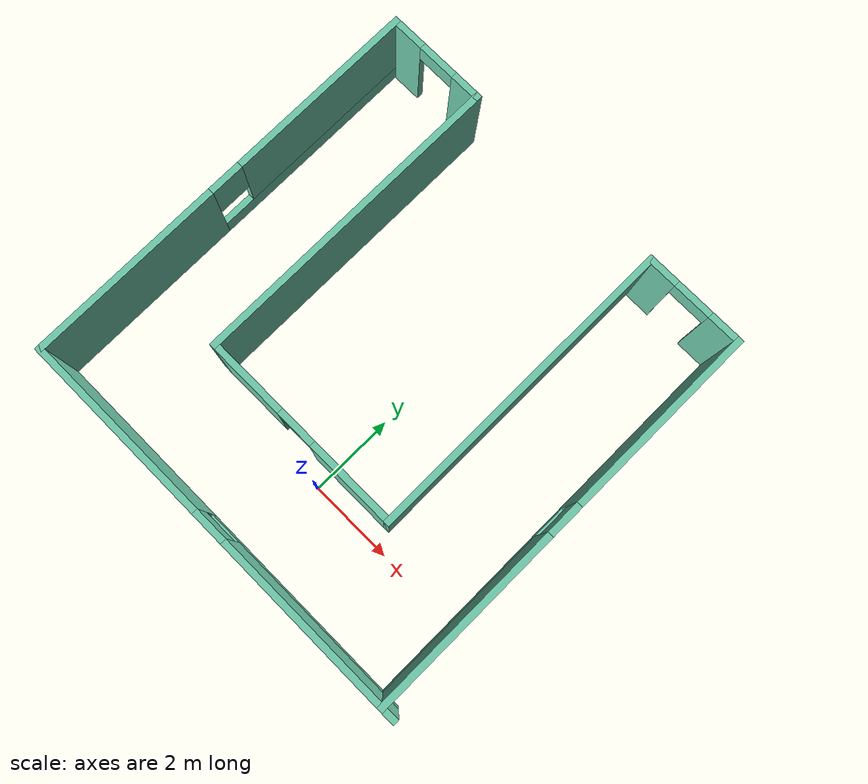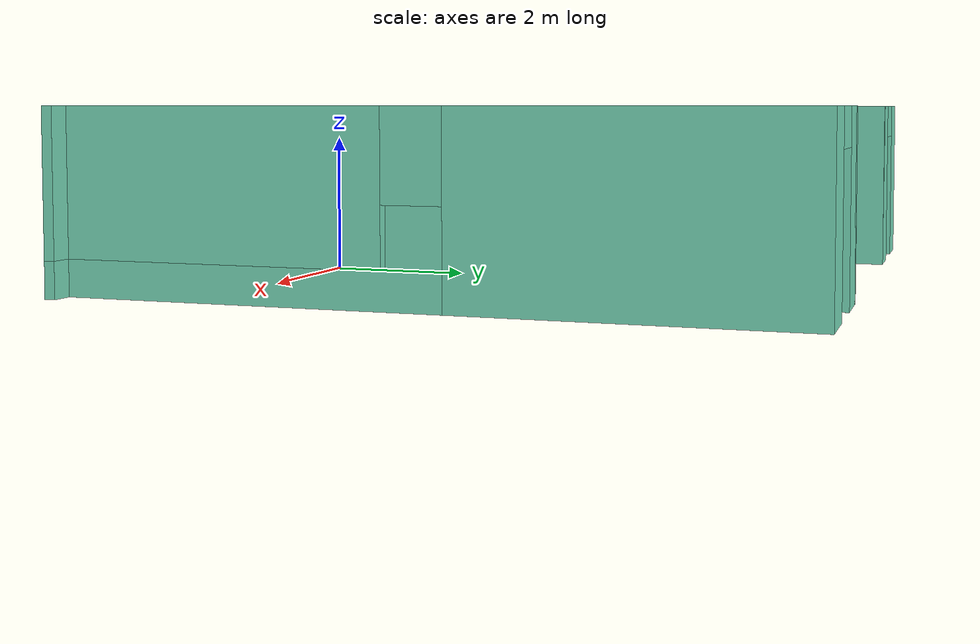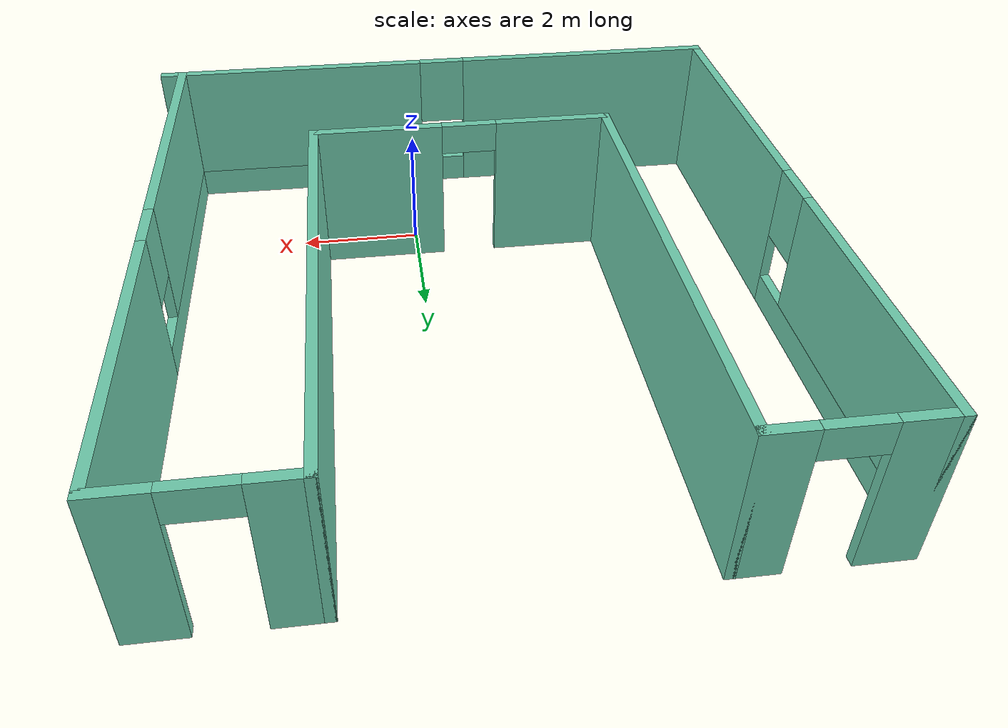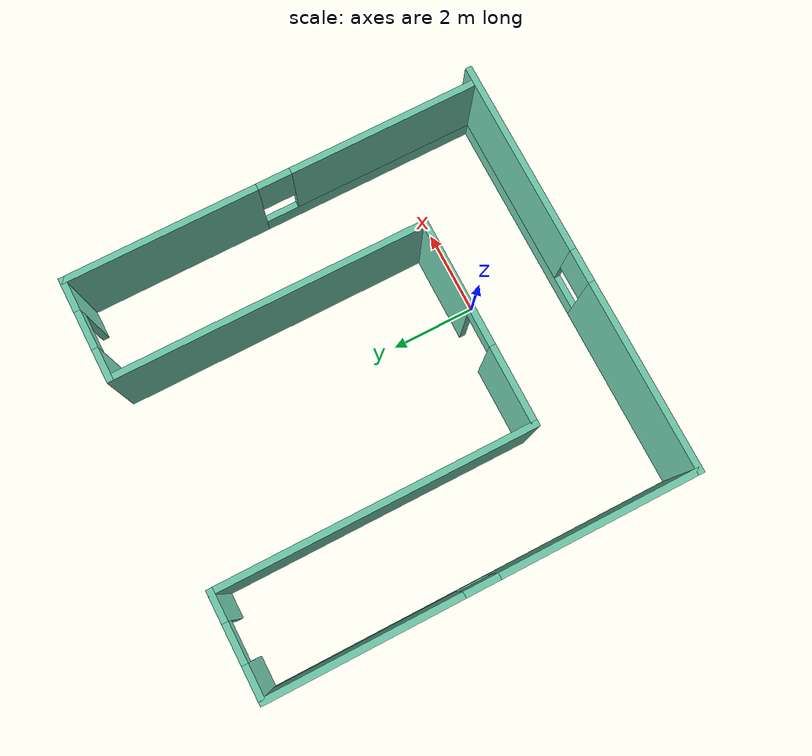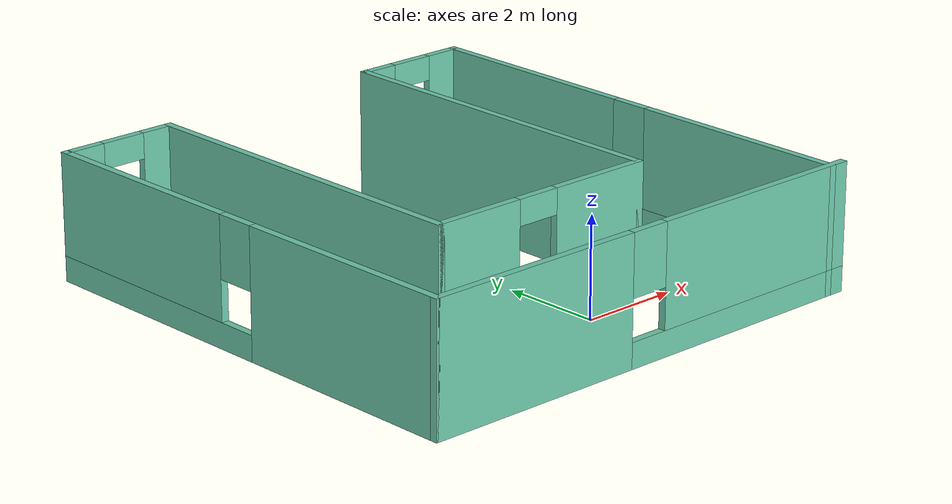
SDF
<?xml version='1.0'?>
<sdf version='1.6'>
  <model name='mybuilding'>
    <pose frame=''>-0.638341 2.90605 0 0 -0 0</pose>
    <link name='Wall_28'>
      <pose frame=''>0 -4.925 0 0 -0 0</pose>
      <visual name='Wall_28_Visual_0'>
        <pose frame=''>-2.73483 0 1.25 0 -0 0</pose>
        <geometry>
          <box>
            <size>4.53034 0.15 2.5</size>
          </box>
        </geometry>
        <material>
          <script>
            <uri>file://media/materials/scripts/gazebo.material</uri>
            <name>Gazebo/Grey</name>
          </script>
          <ambient>0.435294 0.796078 0.67451 1</ambient>
        </material>
        <meta>
          <layer>0</layer>
        </meta>
      </visual>
      <collision name='Wall_28_Collision_0'>
        <geometry>
          <box>
            <size>4.53034 0.15 2.5</size>
          </box>
        </geometry>
        <pose frame=''>-2.73483 0 1.25 0 -0 0</pose>
      </collision>
      <visual name='Wall_28_Visual_1'>
        <pose frame=''>2.26517 0 0.25 0 -0 0</pose>
        <geometry>
          <box>
            <size>5.46966 0.15 0.5</size>
          </box>
        </geometry>
        <material>
          <script>
            <uri>file://media/materials/scripts/gazebo.material</uri>
            <name>Gazebo/Grey</name>
          </script>
          <ambient>0.435294 0.796078 0.67451 1</ambient>
        </material>
        <meta>
          <layer>0</layer>
        </meta>
      </visual>
      <collision name='Wall_28_Collision_1'>
        <geometry>
          <box>
            <size>5.46966 0.15 0.5</size>
          </box>
        </geometry>
        <pose frame=''>2.26517 0 0.25 0 -0 0</pose>
      </collision>
      <visual name='Wall_28_Visual_2'>
        <pose frame=''>2.66517 0 1.5 0 -0 0</pose>
        <geometry>
          <box>
            <size>4.66966 0.15 2</size>
          </box>
        </geometry>
        <material>
          <script>
            <uri>file://media/materials/scripts/gazebo.material</uri>
            <name>Gazebo/Grey</name>
          </script>
          <ambient>0.435294 0.796078 0.67451 1</ambient>
        </material>
        <meta>
          <layer>0</layer>
        </meta>
      </visual>
      <collision name='Wall_28_Collision_2'>
        <geometry>
          <box>
            <size>4.66966 0.15 2</size>
          </box>
        </geometry>
        <pose frame=''>2.66517 0 1.5 0 -0 0</pose>
      </collision>
      <visual name='Wall_28_Visual_3'>
        <pose frame=''>-0.069659 0 1.9 0 -0 0</pose>
        <geometry>
          <box>
            <size>0.8 0.15 1.2</size>
          </box>
        </geometry>
        <material>
          <script>
            <uri>file://media/materials/scripts/gazebo.material</uri>
            <name>Gazebo/Grey</name>
          </script>
          <ambient>0.435294 0.796078 0.67451 1</ambient>
        </material>
        <meta>
          <layer>0</layer>
        </meta>
      </visual>
      <collision name='Wall_28_Collision_3'>
        <geometry>
          <box>
            <size>0.8 0.15 1.2</size>
          </box>
        </geometry>
        <pose frame=''>-0.069659 0 1.9 0 -0 0</pose>
      </collision>
    </link>
    <link name='Wall_30'>
      <pose frame=''>-4.925 0 0 0 -0 1.5708</pose>
      <visual name='Wall_30_Visual_0'>
        <pose frame=''>-2.66253 0 1.25 0 -0 0</pose>
        <geometry>
          <box>
            <size>4.67494 0.15 2.5</size>
          </box>
        </geometry>
        <material>
          <script>
            <uri>file://media/materials/scripts/gazebo.material</uri>
            <name>Gazebo/Grey</name>
          </script>
          <ambient>0.435294 0.796078 0.67451 1</ambient>
        </material>
        <meta>
          <layer>0</layer>
        </meta>
      </visual>
      <collision name='Wall_30_Collision_0'>
        <geometry>
          <box>
            <size>4.67494 0.15 2.5</size>
          </box>
        </geometry>
        <pose frame=''>-2.66253 0 1.25 0 -0 0</pose>
      </collision>
      <visual name='Wall_30_Visual_1'>
        <pose frame=''>2.33747 0 0.25 0 -0 0</pose>
        <geometry>
          <box>
            <size>5.32506 0.15 0.5</size>
          </box>
        </geometry>
        <material>
          <script>
            <uri>file://media/materials/scripts/gazebo.material</uri>
            <name>Gazebo/Grey</name>
          </script>
          <ambient>0.435294 0.796078 0.67451 1</ambient>
        </material>
        <meta>
          <layer>0</layer>
        </meta>
      </visual>
      <collision name='Wall_30_Collision_1'>
        <geometry>
          <box>
            <size>5.32506 0.15 0.5</size>
          </box>
        </geometry>
        <pose frame=''>2.33747 0 0.25 0 -0 0</pose>
      </collision>
      <visual name='Wall_30_Visual_2'>
        <pose frame=''>2.73747 0 1.5 0 -0 0</pose>
        <geometry>
          <box>
            <size>4.52506 0.15 2</size>
          </box>
        </geometry>
        <material>
          <script>
            <uri>file://media/materials/scripts/gazebo.material</uri>
            <name>Gazebo/Grey</name>
          </script>
          <ambient>0.435294 0.796078 0.67451 1</ambient>
        </material>
        <meta>
          <layer>0</layer>
        </meta>
      </visual>
      <collision name='Wall_30_Collision_2'>
        <geometry>
          <box>
            <size>4.52506 0.15 2</size>
          </box>
        </geometry>
        <pose frame=''>2.73747 0 1.5 0 -0 0</pose>
      </collision>
      <visual name='Wall_30_Visual_3'>
        <pose frame=''>0.074937 0 1.9 0 -0 0</pose>
        <geometry>
          <box>
            <size>0.8 0.15 1.2</size>
          </box>
        </geometry>
        <material>
          <script>
            <uri>file://media/materials/scripts/gazebo.material</uri>
            <name>Gazebo/Grey</name>
          </script>
          <ambient>0.435294 0.796078 0.67451 1</ambient>
        </material>
        <meta>
          <layer>0</layer>
        </meta>
      </visual>
      <collision name='Wall_30_Collision_3'>
        <geometry>
          <box>
            <size>0.8 0.15 1.2</size>
          </box>
        </geometry>
        <pose frame=''>0.074937 0 1.9 0 -0 0</pose>
      </collision>
    </link>
    <link name='Wall_32'>
      <pose frame=''>-3.75 4.925 0 0 -0 0</pose>
      <visual name='Wall_32_Visual_0'>
        <pose frame=''>-0.820325 0 1.25 0 -0 0</pose>
        <geometry>
          <box>
            <size>0.859349 0.15 2.5</size>
          </box>
        </geometry>
        <material>
          <script>
            <uri>file://media/materials/scripts/gazebo.material</uri>
            <name>Gazebo/Grey</name>
          </script>
          <ambient>0.435294 0.796078 0.67451 1</ambient>
        </material>
        <meta>
          <layer>0</layer>
        </meta>
      </visual>
      <collision name='Wall_32_Collision_0'>
        <geometry>
          <box>
            <size>0.859349 0.15 2.5</size>
          </box>
        </geometry>
        <pose frame=''>-0.820325 0 1.25 0 -0 0</pose>
      </collision>
      <visual name='Wall_32_Visual_1'>
        <pose frame=''>0.879675 0 1.25 0 -0 0</pose>
        <geometry>
          <box>
            <size>0.740651 0.15 2.5</size>
          </box>
        </geometry>
        <material>
          <script>
            <uri>file://media/materials/scripts/gazebo.material</uri>
            <name>Gazebo/Grey</name>
          </script>
          <ambient>0.435294 0.796078 0.67451 1</ambient>
        </material>
        <meta>
          <layer>0</layer>
        </meta>
      </visual>
      <collision name='Wall_32_Collision_1'>
        <geometry>
          <box>
            <size>0.740651 0.15 2.5</size>
          </box>
        </geometry>
        <pose frame=''>0.879675 0 1.25 0 -0 0</pose>
      </collision>
      <visual name='Wall_32_Visual_2'>
        <pose frame=''>0.059349 0 2.25 0 -0 0</pose>
        <geometry>
          <box>
            <size>0.9 0.15 0.5</size>
          </box>
        </geometry>
        <material>
          <script>
            <uri>file://media/materials/scripts/gazebo.material</uri>
            <name>Gazebo/Grey</name>
          </script>
          <ambient>0.435294 0.796078 0.67451 1</ambient>
        </material>
        <meta>
          <layer>0</layer>
        </meta>
      </visual>
      <collision name='Wall_32_Collision_2'>
        <geometry>
          <box>
            <size>0.9 0.15 0.5</size>
          </box>
        </geometry>
        <pose frame=''>0.059349 0 2.25 0 -0 0</pose>
      </collision>
    </link>
    <link name='Wall_33'>
      <collision name='Wall_33_Collision'>
        <geometry>
          <box>
            <size>7.5 0.15 2.5</size>
          </box>
        </geometry>
        <pose frame=''>0 0 1.25 0 -0 0</pose>
      </collision>
      <visual name='Wall_33_Visual'>
        <pose frame=''>0 0 1.25 0 -0 0</pose>
        <geometry>
          <box>
            <size>7.5 0.15 2.5</size>
          </box>
        </geometry>
        <material>
          <script>
            <uri>file://media/materials/scripts/gazebo.material</uri>
            <name>Gazebo/Grey</name>
          </script>
          <ambient>0.435294 0.796078 0.67451 1</ambient>
        </material>
        <meta>
          <layer>0</layer>
        </meta>
      </visual>
      <pose frame=''>-2.575 1.25 0 0 0 -1.5708</pose>
    </link>
    <link name='Wall_34'>
      <pose frame=''>-0.15 -2.425 0 0 -0 0</pose>
      <visual name='Wall_34_Visual_0'>
        <pose frame=''>-1.53654 0 1.25 0 -0 0</pose>
        <geometry>
          <box>
            <size>1.92691 0.15 2.5</size>
          </box>
        </geometry>
        <material>
          <script>
            <uri>file://media/materials/scripts/gazebo.material</uri>
            <name>Gazebo/Grey</name>
          </script>
          <ambient>0.435294 0.796078 0.67451 1</ambient>
        </material>
        <meta>
          <layer>0</layer>
        </meta>
      </visual>
      <collision name='Wall_34_Collision_0'>
        <geometry>
          <box>
            <size>1.92691 0.15 2.5</size>
          </box>
        </geometry>
        <pose frame=''>-1.53654 0 1.25 0 -0 0</pose>
      </collision>
      <visual name='Wall_34_Visual_1'>
        <pose frame=''>1.41346 0 1.25 0 -0 0</pose>
        <geometry>
          <box>
            <size>2.17308 0.15 2.5</size>
          </box>
        </geometry>
        <material>
          <script>
            <uri>file://media/materials/scripts/gazebo.material</uri>
            <name>Gazebo/Grey</name>
          </script>
          <ambient>0.435294 0.796078 0.67451 1</ambient>
        </material>
        <meta>
          <layer>0</layer>
        </meta>
      </visual>
      <collision name='Wall_34_Collision_1'>
        <geometry>
          <box>
            <size>2.17308 0.15 2.5</size>
          </box>
        </geometry>
        <pose frame=''>1.41346 0 1.25 0 -0 0</pose>
      </collision>
      <visual name='Wall_34_Visual_2'>
        <pose frame=''>-0.123085 0 2.25 0 -0 0</pose>
        <geometry>
          <box>
            <size>0.9 0.15 0.5</size>
          </box>
        </geometry>
        <material>
          <script>
            <uri>file://media/materials/scripts/gazebo.material</uri>
            <name>Gazebo/Grey</name>
          </script>
          <ambient>0.435294 0.796078 0.67451 1</ambient>
        </material>
        <meta>
          <layer>0</layer>
        </meta>
      </visual>
      <collision name='Wall_34_Collision_2'>
        <geometry>
          <box>
            <size>0.9 0.15 0.5</size>
          </box>
        </geometry>
        <pose frame=''>-0.123085 0 2.25 0 -0 0</pose>
      </collision>
    </link>
    <link name='Wall_35'>
      <collision name='Wall_35_Collision'>
        <geometry>
          <box>
            <size>7.5 0.15 2.5</size>
          </box>
        </geometry>
        <pose frame=''>0 0 1.25 0 -0 0</pose>
      </collision>
      <visual name='Wall_35_Visual'>
        <pose frame=''>0 0 1.25 0 -0 0</pose>
        <geometry>
          <box>
            <size>7.5 0.15 2.5</size>
          </box>
        </geometry>
        <material>
          <script>
            <uri>file://media/materials/scripts/gazebo.material</uri>
            <name>Gazebo/Grey</name>
          </script>
          <ambient>0.435294 0.796078 0.67451 1</ambient>
        </material>
        <meta>
          <layer>0</layer>
        </meta>
      </visual>
      <pose frame=''>2.275 1.25 0 0 -0 1.5708</pose>
    </link>
    <link name='Wall_36'>
      <pose frame=''>3.45 4.925 0 0 -0 0</pose>
      <visual name='Wall_36_Visual_0'>
        <pose frame=''>-0.860361 0 1.25 0 -0 0</pose>
        <geometry>
          <box>
            <size>0.779278 0.15 2.5</size>
          </box>
        </geometry>
        <material>
          <script>
            <uri>file://media/materials/scripts/gazebo.material</uri>
            <name>Gazebo/Grey</name>
          </script>
          <ambient>0.435294 0.796078 0.67451 1</ambient>
        </material>
        <meta>
          <layer>0</layer>
        </meta>
      </visual>
      <collision name='Wall_36_Collision_0'>
        <geometry>
          <box>
            <size>0.779278 0.15 2.5</size>
          </box>
        </geometry>
        <pose frame=''>-0.860361 0 1.25 0 -0 0</pose>
      </collision>
      <visual name='Wall_36_Visual_1'>
        <pose frame=''>0.839639 0 1.25 0 -0 0</pose>
        <geometry>
          <box>
            <size>0.820722 0.15 2.5</size>
          </box>
        </geometry>
        <material>
          <script>
            <uri>file://media/materials/scripts/gazebo.material</uri>
            <name>Gazebo/Grey</name>
          </script>
          <ambient>0.435294 0.796078 0.67451 1</ambient>
        </material>
        <meta>
          <layer>0</layer>
        </meta>
      </visual>
      <collision name='Wall_36_Collision_1'>
        <geometry>
          <box>
            <size>0.820722 0.15 2.5</size>
          </box>
        </geometry>
        <pose frame=''>0.839639 0 1.25 0 -0 0</pose>
      </collision>
      <visual name='Wall_36_Visual_2'>
        <pose frame=''>-0.020722 0 2.25 0 -0 0</pose>
        <geometry>
          <box>
            <size>0.9 0.15 0.5</size>
          </box>
        </geometry>
        <material>
          <script>
            <uri>file://media/materials/scripts/gazebo.material</uri>
            <name>Gazebo/Grey</name>
          </script>
          <ambient>0.435294 0.796078 0.67451 1</ambient>
        </material>
        <meta>
          <layer>0</layer>
        </meta>
      </visual>
      <collision name='Wall_36_Collision_2'>
        <geometry>
          <box>
            <size>0.9 0.15 0.5</size>
          </box>
        </geometry>
        <pose frame=''>-0.020722 0 2.25 0 -0 0</pose>
      </collision>
    </link>
    <link name='Wall_37'>
      <pose frame=''>4.625 0 0 0 0 -1.5708</pose>
      <visual name='Wall_37_Visual_0'>
        <pose frame=''>-2.69678 0 1.25 0 -0 0</pose>
        <geometry>
          <box>
            <size>4.60643 0.15 2.5</size>
          </box>
        </geometry>
        <material>
          <script>
            <uri>file://media/materials/scripts/gazebo.material</uri>
            <name>Gazebo/Grey</name>
          </script>
          <ambient>0.435294 0.796078 0.67451 1</ambient>
        </material>
        <meta>
          <layer>0</layer>
        </meta>
      </visual>
      <collision name='Wall_37_Collision_0'>
        <geometry>
          <box>
            <size>4.60643 0.15 2.5</size>
          </box>
        </geometry>
        <pose frame=''>-2.69678 0 1.25 0 -0 0</pose>
      </collision>
      <visual name='Wall_37_Visual_1'>
        <pose frame=''>2.30322 0 0.25 0 -0 0</pose>
        <geometry>
          <box>
            <size>5.39357 0.15 0.5</size>
          </box>
        </geometry>
        <material>
          <script>
            <uri>file://media/materials/scripts/gazebo.material</uri>
            <name>Gazebo/Grey</name>
          </script>
          <ambient>0.435294 0.796078 0.67451 1</ambient>
        </material>
        <meta>
          <layer>0</layer>
        </meta>
      </visual>
      <collision name='Wall_37_Collision_1'>
        <geometry>
          <box>
            <size>5.39357 0.15 0.5</size>
          </box>
        </geometry>
        <pose frame=''>2.30322 0 0.25 0 -0 0</pose>
      </collision>
      <visual name='Wall_37_Visual_2'>
        <pose frame=''>2.70322 0 1.5 0 -0 0</pose>
        <geometry>
          <box>
            <size>4.59357 0.15 2</size>
          </box>
        </geometry>
        <material>
          <script>
            <uri>file://media/materials/scripts/gazebo.material</uri>
            <name>Gazebo/Grey</name>
          </script>
          <ambient>0.435294 0.796078 0.67451 1</ambient>
        </material>
        <meta>
          <layer>0</layer>
        </meta>
      </visual>
      <collision name='Wall_37_Collision_2'>
        <geometry>
          <box>
            <size>4.59357 0.15 2</size>
          </box>
        </geometry>
        <pose frame=''>2.70322 0 1.5 0 -0 0</pose>
      </collision>
      <visual name='Wall_37_Visual_3'>
        <pose frame=''>0.006433 0 1.9 0 -0 0</pose>
        <geometry>
          <box>
            <size>0.8 0.15 1.2</size>
          </box>
        </geometry>
        <material>
          <script>
            <uri>file://media/materials/scripts/gazebo.material</uri>
            <name>Gazebo/Grey</name>
          </script>
          <ambient>0.435294 0.796078 0.67451 1</ambient>
        </material>
        <meta>
          <layer>0</layer>
        </meta>
      </visual>
      <collision name='Wall_37_Collision_3'>
        <geometry>
          <box>
            <size>0.8 0.15 1.2</size>
          </box>
        </geometry>
        <pose frame=''>0.006433 0 1.9 0 -0 0</pose>
      </collision>
    </link>
    <static>1</static>
  </model>
</sdf>
